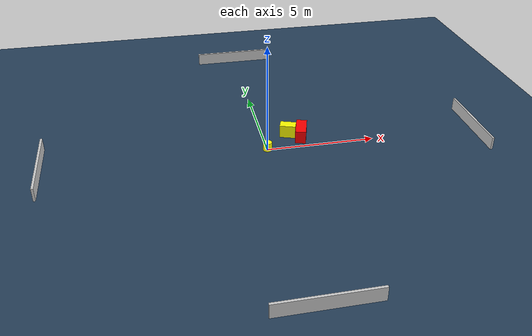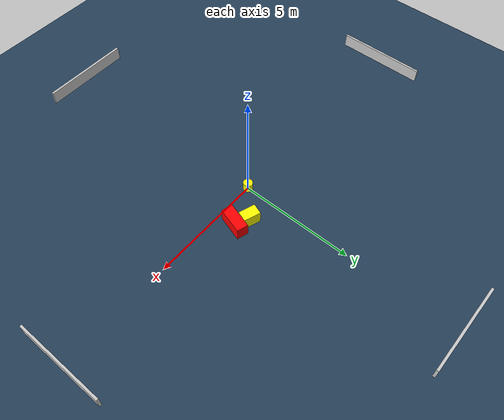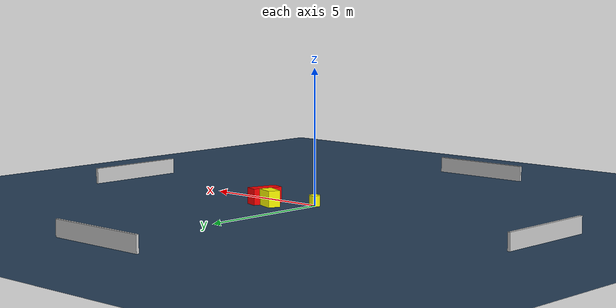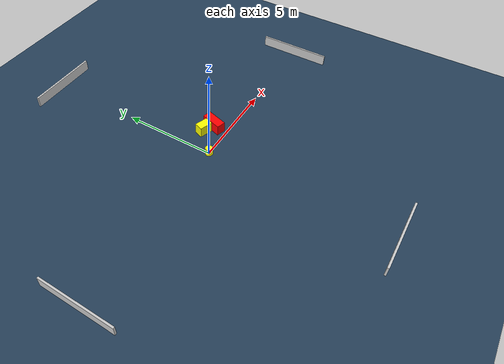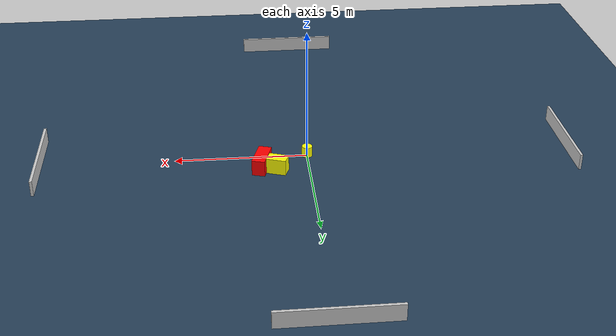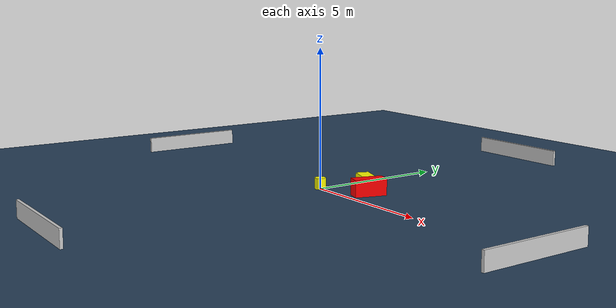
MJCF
<?xml version="1.0" ?>
<mujoco model="generated_environment">
  <option timestep="0.01" integrator="RK4" cone="elliptic"/>
  <default>
    <geom density="1"/>
  </default>
  <asset>
    <texture builtin="gradient" height="3072" name="skybox" rgb1="0.3 0.5 0.7" rgb2="0 0 0" type="skybox" width="512"/>
    <texture builtin="checker" height="300" name="groundplane" rgb1="0.2 0.3 0.4" rgb2="0.1 0.2 0.3" type="2d" width="300"/>
    <material name="groundplane" reflectance="0.2" texrepeat="5 5" texture="groundplane"/>
  </asset>
  <worldbody>
    <light dir="0 0 -1" directional="true" pos="0 0 1.5"/>
    <geom condim="3" friction="0.5 0.005 0.001" material="groundplane" name="floor" pos="0 0 0" size="0 0 0.05" type="plane"/>
    <body name="walls">
      <geom name="wall_1" condim="4" pos="-10.0 0.0 0.3" rgba="0.800000011920929 0.800000011920929 0.800000011920929 1.0" size="0.05 2.0 0.3" type="box"/>
      <geom name="wall_2" condim="4" pos="10.0 0.0 0.3" rgba="0.800000011920929 0.800000011920929 0.800000011920929 1.0" size="0.05 2.0 0.3" type="box"/>
      <geom name="wall_3" condim="4" pos="0.0 -10.0 0.3" rgba="0.800000011920929 0.800000011920929 0.800000011920929 1.0" size="2.0 0.05 0.3" type="box"/>
      <geom name="wall_4" condim="4" pos="0.0 10.0 0.3" rgba="0.800000011920929 0.800000011920929 0.800000011920929 1.0" size="2.0 0.05 0.3" type="box"/>
    </body>
    <body name="robot">
      <joint name="joint_x" type="slide" pos="0 0 0" axis="1 0 0"/>
      <joint name="joint_y" type="slide" pos="0 0 0" axis="0 1 0"/>
      <geom name="robot" type="cylinder" pos="0.0 0.0 0.2" size="0.2 0.2 0.0" mass="5.0" friction="1.0 0.005 0.0001" condim="4" rgba="1.0 1.0 0.0 1.0"/>
    </body>
    <body name="obstacle_1_movable">
      <geom name="obstacle_1_movable" condim="4" pos="1.1971864084699642 1.0877216219066 0.3" euler="0 0 250.6264390446683" friction="0.0 0.005 0.001" rgba="1.0 1.0 0.0 1.0" size="0.23115951021867376 0.3675417492961337 0.3" type="box" mass="0.1"/>
      <joint type="free"/>
    </body>
    <body name="obstacle_2_static">
      <geom name="obstacle_2_static" condim="4" pos="1.7623861062725754 0.7994084420102139 0.3" euler="0 0 343.4361356156734" friction="0.0 0.005 0.001" rgba="1.0 0.0 0.0 1.0" size="0.2451800251449601 0.5722719791023749 0.3" type="box"/>
    </body>
  </worldbody>
  <actuator>
    <motor name="actuator_x" joint="joint_x" gear="1" ctrlrange="-1 1"/>
    <motor name="actuator_y" joint="joint_y" gear="1" ctrlrange="-1 1"/>
  </actuator>
</mujoco>
